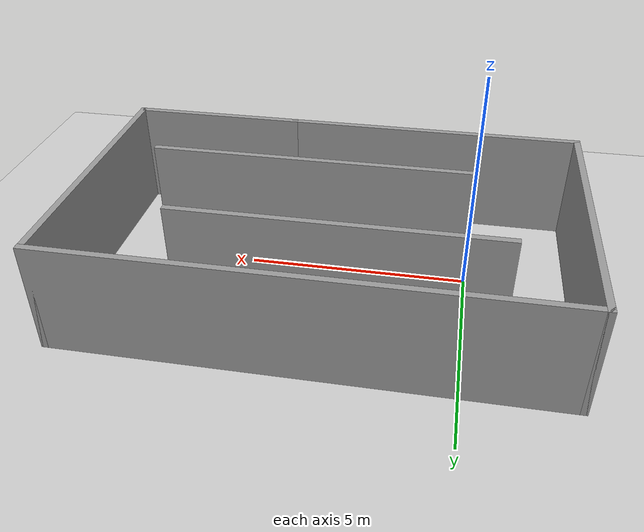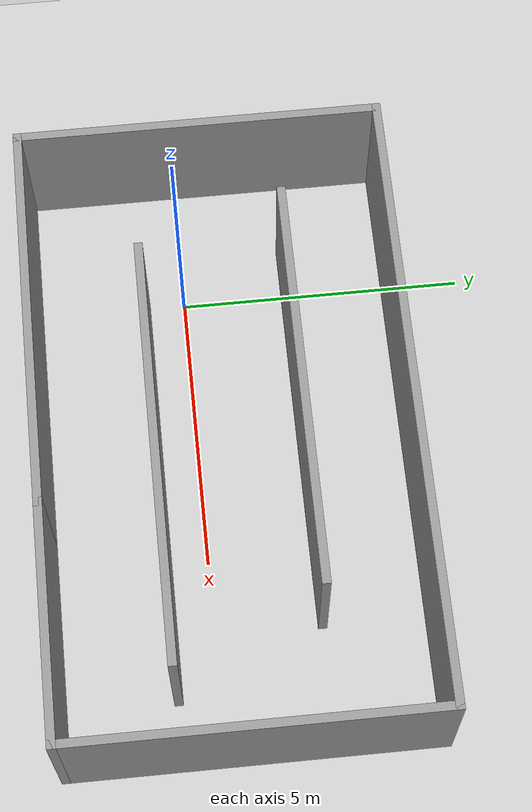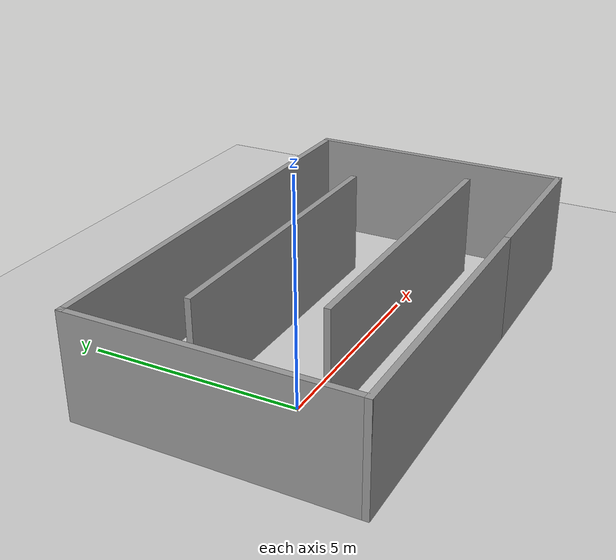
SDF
<sdf version="1.6">
 <world name="default">
  <light name="sun" type="directional">
   <pose>0 0 10 0 -0 0</pose>
   <diffuse>0.8 0.8 0.8 1</diffuse>
   <specular>0.2 0.2 0.2 1</specular>
   <attenuation>
    <range>1000</range>
    <constant>0.9</constant>
    <linear>0.01</linear>
    <quadratic>0.001</quadratic>
   </attenuation>
   <direction>-0.5 0.1 -0.9</direction>
  </light>
  <model name="ground_plane">
   <static>1</static>
   <link name="link">
    <collision name="collision">
     <geometry><plane><normal>0 0 1</normal><size>100 100</size></plane></geometry>
     <surface>
      <contact><collide_bitmask>65535</collide_bitmask></contact>
      <friction><ode><mu>100</mu><mu2>50</mu2></ode></friction>
     </surface>
    </collision>
    <visual name="visual">
     <cast_shadows>0</cast_shadows>
     <geometry><plane><normal>0 0 1</normal><size>100 100</size></plane></geometry>
     <material>
      <script><uri>file://media/materials/scripts/gazebo.material</uri><name>Gazebo/Grey</name></script>
     </material>
    </visual>
   </link>
  </model>
  <gravity>0 0 -9.8</gravity>
  <magnetic_field>6e-06 2.3e-05 -4.2e-05</magnetic_field>
  <atmosphere type="adiabatic"/>
  <physics name="default_physics" default="0" type="ode">
   <max_step_size>0.001</max_step_size>
   <real_time_factor>1</real_time_factor>
   <real_time_update_rate>1000</real_time_update_rate>
  </physics>
  <scene><ambient>0.4 0.4 0.4 1</ambient><background>0.7 0.7 0.7 1</background><shadows>1</shadows></scene>
  <spherical_coordinates>
   <surface_model>EARTH_WGS84</surface_model>
   <latitude_deg>0</latitude_deg>
   <longitude_deg>0</longitude_deg>
   <elevation>0</elevation>
   <heading_deg>0</heading_deg>
  </spherical_coordinates>
  <model name="shome">
   <pose>3.075 0.515 0 0 -0 0</pose>
   <link name="Wall_0">
    <collision name="Wall_0_Collision">
     <geometry><box><size>7 0.15 2.5</size></box></geometry>
     <pose>0 0 1.25 0 -0 0</pose>
    </collision>
    <visual name="Wall_0_Visual">
     <pose>0 0 1.25 0 -0 0</pose>
     <geometry><box><size>7 0.15 2.5</size></box></geometry>
     <material>
      <script><uri>file://media/materials/scripts/gazebo.material</uri><name>Gazebo/Grey</name></script>
      <ambient>1 1 1 1</ambient>
     </material>
     <meta><layer>0</layer></meta>
    </visual>
    <pose>-2 -3.175 0 0 -0 0</pose>
   </link>
   <link name="Wall_15">
    <collision name="Wall_15_Collision">
     <geometry><box><size>7.5 0.15 2.5</size></box></geometry>
     <pose>0 0 1.25 0 -0 0</pose>
    </collision>
    <visual name="Wall_15_Visual">
     <pose>0 0 1.25 0 -0 0</pose>
     <geometry><box><size>7.5 0.15 2.5</size></box></geometry>
     <material>
      <script><uri>file://media/materials/scripts/gazebo.material</uri><name>Gazebo/Grey</name></script>
      <ambient>1 1 1 1</ambient>
     </material>
     <meta><layer>0</layer></meta>
    </visual>
    <pose>0.619915 -1.21463 0 0 -0 0</pose>
   </link>
   <link name="Wall_4">
    <collision name="Wall_4_Collision">
     <geometry><box><size>6.5 0.15 2.5</size></box></geometry>
     <pose>0 0 1.25 0 -0 0</pose>
    </collision>
    <visual name="Wall_4_Visual">
     <pose>0 0 1.25 0 -0 0</pose>
     <geometry><box><size>6.5 0.15 2.5</size></box></geometry>
     <material>
      <script><uri>file://media/materials/scripts/gazebo.material</uri><name>Gazebo/Grey</name></script>
      <ambient>1 1 1 1</ambient>
     </material>
     <meta><layer>0</layer></meta>
    </visual>
    <pose>-5.425 0 0 0 -0 1.5708</pose>
   </link>
   <link name="Wall_5">
    <collision name="Wall_5_Collision">
     <geometry><box><size>11 0.15 2.5</size></box></geometry>
     <pose>0 0 1.25 0 -0 0</pose>
    </collision>
    <visual name="Wall_5_Visual">
     <pose>0 0 1.25 0 -0 0</pose>
     <geometry><box><size>11 0.15 2.5</size></box></geometry>
     <material>
      <script><uri>file://media/materials/scripts/gazebo.material</uri><name>Gazebo/Grey</name></script>
      <ambient>1 1 1 1</ambient>
     </material>
     <meta><layer>0</layer></meta>
    </visual>
    <pose>0 3.175 0 0 -0 0</pose>
   </link>
   <link name="Wall_6">
    <collision name="Wall_6_Collision">
     <geometry><box><size>6.5 0.15 2.5</size></box></geometry>
     <pose>0 0 1.25 0 -0 0</pose>
    </collision>
    <visual name="Wall_6_Visual">
     <pose>0 0 1.25 0 -0 0</pose>
     <geometry><box><size>6.5 0.15 2.5</size></box></geometry>
     <material>
      <script><uri>file://media/materials/scripts/gazebo.material</uri><name>Gazebo/Grey</name></script>
      <ambient>1 1 1 1</ambient>
     </material>
     <meta><layer>0</layer></meta>
    </visual>
    <pose>5.425 0 0 0 0 -1.5708</pose>
   </link>
   <link name="Wall_7">
    <collision name="Wall_7_Collision">
     <geometry><box><size>4.15 0.15 2.5</size></box></geometry>
     <pose>0 0 1.25 0 -0 0</pose>
    </collision>
    <visual name="Wall_7_Visual">
     <pose>0 0 1.25 0 -0 0</pose>
     <geometry><box><size>4.15 0.15 2.5</size></box></geometry>
     <material>
      <script><uri>file://media/materials/scripts/gazebo.material</uri><name>Gazebo/Grey</name></script>
      <ambient>1 1 1 1</ambient>
     </material>
     <meta><layer>0</layer></meta>
    </visual>
    <pose>3.425 -3.175 0 0 -0 3.14159</pose>
   </link>
   <link name="Wall_9">
    <collision name="Wall_9_Collision">
     <geometry><box><size>7.25 0.15 2.5</size></box></geometry>
     <pose>0 0 1.25 0 -0 0</pose>
    </collision>
    <visual name="Wall_9_Visual">
     <pose>0 0 1.25 0 -0 0</pose>
     <geometry><box><size>7.25 0.15 2.5</size></box></geometry>
     <material>
      <script><uri>file://media/materials/scripts/gazebo.material</uri><name>Gazebo/Grey</name></script>
      <ambient>1 1 1 1</ambient>
     </material>
     <meta><layer>0</layer></meta>
    </visual>
    <pose>-0.361918 1.33407 0 0 -0 0</pose>
   </link>
   <static>1</static>
  </model>
 </world>
</sdf>
